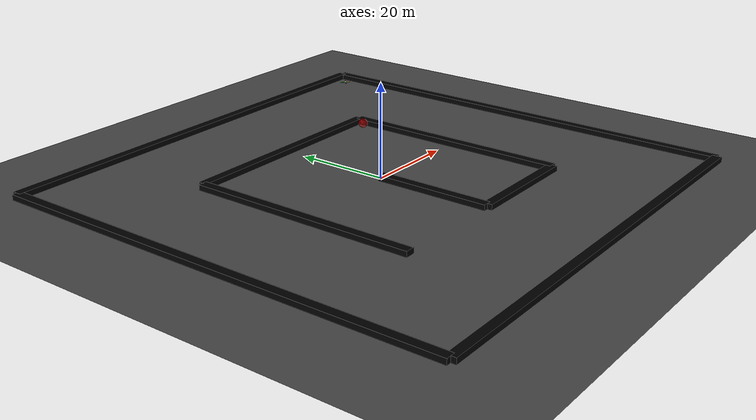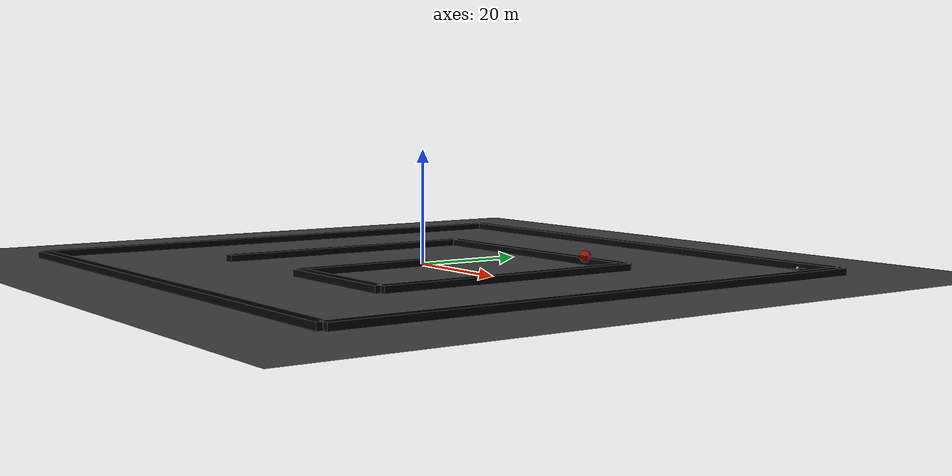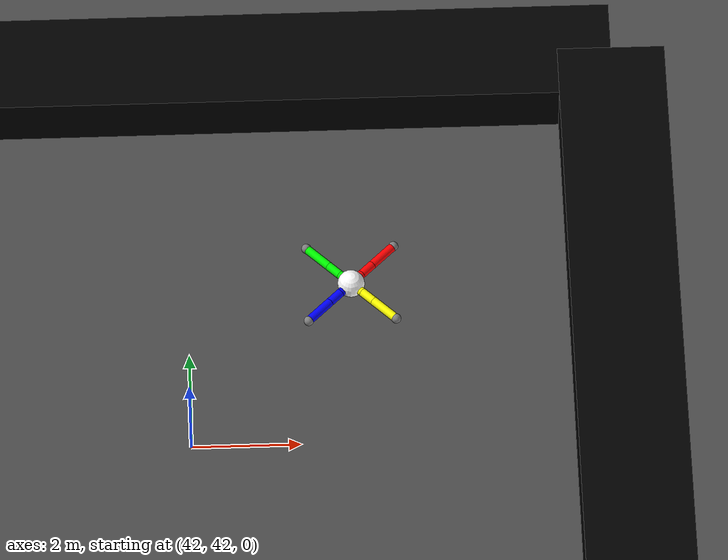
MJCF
<mujoco model="ant">
  <compiler angle="degree" coordinate="local" inertiafromgeom="true"/>
  <option integrator="RK4" timestep="0.01"/>
  <custom>
    <numeric data="0.0 0.0 0.55 1.0 0.0 0.0 0.0 0.0 1.0 0.0 -1.0 0.0 -1.0 0.0 1.0" name="init_qpos"/>
  </custom>
  <default>
    <joint armature="1" damping="1" limited="true"/>
    <geom conaffinity="0" condim="3" density="5.0" friction="1 0.5 0.5" margin="0.01" rgba="0.8 0.6 0.4 1"/>
  </default>
  <asset>
    <texture builtin="gradient" height="100" rgb1="1 1 1" rgb2="0 0 0" type="skybox" width="100"/>
    <texture builtin="flat" height="1278" mark="cross" markrgb="1 1 1" name="texgeom" random="0.01" rgb1="0.8 0.6 0.4" rgb2="0.8 0.6 0.4" type="cube" width="127"/>
    <texture builtin="checker" height="100" name="texplane" rgb1="0 0 0" rgb2="0.8 0.8 0.8" type="2d" width="100"/>
    <material name="MatPlane" reflectance="0" shininess="0" specular="0" texrepeat="60 60"/>
    <material name="geom" texture="texgeom" texuniform="true"/>
  </asset>
  <worldbody>
    <light cutoff="100" diffuse="1 1 1" dir="-0 0 -1.3" directional="true" exponent="1" pos="0 0 1.3" specular=".1 .1 .1"/>
    <geom conaffinity="3" condim="3" material="MatPlane" name="floor" pos="0 0 0" rgba="0.3 0.3 0.3 1" size="100 100 100" type="plane"/>
    <body name="wall_1" pos="-50 0 0">
      <geom pos="0 0 0" size="1 50 1" type="box" rgba="0 0 0 1" contype="1" conaffinity="1"/>
    </body>
    <body name="wall_2" pos="50 0 0">
      <geom pos="0 0 0" size="1 50 1" type="box" rgba="0 0 0 1" contype="1" conaffinity="1"/>
    </body>
    <body name="wall_3" pos="0 -50 0">
      <geom pos="0 0 0" size="50 1 1" type="box" rgba="0 0 0 1" contype="1" conaffinity="1"/>
    </body>
    <body name="wall_4" pos="0 50 0">
      <geom pos="0 0 0" size="50 1 1" type="box" rgba="0 0 0 1" contype="1" conaffinity="1"/>
    </body>
    <body name="wall_5" pos="-25 0 0">
      <geom pos="0 0 0" size="1 25 1" type="box" rgba="0 0 0 1" contype="1" conaffinity="1"/>
    </body>
    <body name="wall_6" pos="0 25 0">
      <geom pos="0 0 0" size="25 1 1" type="box" rgba="0 0 0 1" contype="1" conaffinity="1"/>
    </body>
    <body name="wall_7" pos="25 0 0">
      <geom pos="0 0 0" size="1 25 1" type="box" rgba="0 0 0 1" contype="1" conaffinity="1"/>
    </body>
    <body name="wall_8" pos="12.5 -25 0">
      <geom pos="0 0 0" size="12.5 1 1" type="box" rgba="0 0 0 1" contype="1" conaffinity="1"/>
    </body>
    <body name="wall_9" pos="0 -12.5 0">
      <geom pos="0 0 0" size="1 12.5 1" type="box" rgba="0 0 0 01" contype="1" conaffinity="1"/>
    </body>
    <body name="torso" pos="45 45 0.75">
      <camera name="track" mode="fixed" pos="0 -3 0.3" xyaxes="-1 0 1 0 0 -1"/>
      <geom name="torso_geom" pos="0 0 0" size="0.25" type="sphere" rgba="1 1 1 1"/>
      <site name="torso_site" size="0.01 0.01 0.01"/>
      <joint armature="0" damping="0" limited="false" margin="0.01" name="root" pos="0 0 0" type="free"/>
      <body name="front_left_leg" pos="0 0 0">
        <geom fromto="0.0 0.0 0.0 0.2 0.2 0.0" name="aux_1_geom" size="0.08" type="capsule" rgba="1 0 0 1"/>
        <body name="aux_1" pos="0.2 0.2 0">
          <joint axis="0 0 1" name="hip_1" pos="0.0 0.0 0.0" range="-30 30" type="hinge"/>
          <geom fromto="0.0 0.0 0.0 0.2 0.2 0.0" name="left_leg_geom" size="0.08" type="capsule" rgba="1 0 0 1"/>
          <body pos="0.2 0.2 0">
            <joint axis="-1 1 0" name="ankle_1" pos="0.0 0.0 0.0" range="30 70" type="hinge"/>
            <geom fromto="0.0 0.0 0.0 0.4 0.4 0.0" name="left_ankle_geom" size="0.08" type="capsule" rgba="1 0 0 1"/>
            <site name="foot_1" size="0.09" pos=".4 .4 0" type="sphere"/>
          </body>
        </body>
      </body>
      <body name="front_right_leg" pos="0 0 0">
        <geom fromto="0.0 0.0 0.0 -0.2 0.2 0.0" name="aux_2_geom" size="0.08" type="capsule" rgba="0 1 0 1"/>
        <body name="aux_2" pos="-0.2 0.2 0">
          <joint axis="0 0 1" name="hip_2" pos="0.0 0.0 0.0" range="-30 30" type="hinge"/>
          <geom fromto="0.0 0.0 0.0 -0.2 0.2 0.0" name="right_leg_geom" size="0.08" type="capsule" rgba="0 1 0 1"/>
          <body pos="-0.2 0.2 0">
            <joint axis="1 1 0" name="ankle_2" pos="0.0 0.0 0.0" range="-70 -30" type="hinge"/>
            <geom fromto="0.0 0.0 0.0 -0.4 0.4 0.0" name="right_ankle_geom" size="0.08" type="capsule" rgba="0 1 0 1"/>
            <site name="foot_2" size="0.09" pos="-.4 .4 0" type="sphere"/>
          </body>
        </body>
      </body>
      <body name="back_leg" pos="0 0 0">
        <geom fromto="0.0 0.0 0.0 -0.2 -0.2 0.0" name="aux_3_geom" size="0.08" type="capsule" rgba="0 0 1 1"/>
        <body name="aux_3" pos="-0.2 -0.2 0">
          <joint axis="0 0 1" name="hip_3" pos="0.0 0.0 0.0" range="-30 30" type="hinge"/>
          <geom fromto="0.0 0.0 0.0 -0.2 -0.2 0.0" name="back_leg_geom" size="0.08" type="capsule" rgba="0 0 1 1"/>
          <body pos="-0.2 -0.2 0">
            <joint axis="-1 1 0" name="ankle_3" pos="0.0 0.0 0.0" range="-70 -30" type="hinge"/>
            <geom fromto="0.0 0.0 0.0 -0.4 -0.4 0.0" name="third_ankle_geom" size="0.08" type="capsule" rgba="0 0 1 1"/>
            <site name="foot_3" size="0.09" pos="-.4 -.4 0" type="sphere"/>
          </body>
        </body>
      </body>
      <body name="right_back_leg" pos="0 0 0">
        <geom fromto="0.0 0.0 0.0 0.2 -0.2 0.0" name="aux_4_geom" size="0.08" type="capsule"  rgba="1 1 0 1"/>
        <body name="aux_4" pos="0.2 -0.2 0">
          <joint axis="0 0 1" name="hip_4" pos="0.0 0.0 0.0" range="-30 30" type="hinge"/>
          <geom fromto="0.0 0.0 0.0 0.2 -0.2 0.0" name="rightback_leg_geom" size="0.08" type="capsule" rgba="1 1 0 1"/>
          <body pos="0.2 -0.2 0">
            <joint axis="1 1 0" name="ankle_4" pos="0.0 0.0 0.0" range="30 70" type="hinge"/>
            <geom fromto="0.0 0.0 0.0 0.4 -0.4 0.0" name="fourth_ankle_geom" size="0.08" type="capsule" rgba="1 1 0 1"/>
            <site name="foot_4" size="0.09" pos=".4 -.4 0" type="sphere"/>
          </body>
        </body>
      </body>
    </body>
    <body name="waypoint" pos="20 20 2">
      <geom pos="0 0 0" size="1 1 1" type="ellipsoid" rgba="1 0 0 .5" contype="2" conaffinity="0"/>
      <joint armature="0" damping="0" limited="false" margin="0.01" name="way_root" pos="0 0 0" type="free"/>
    </body>
  </worldbody>
  <actuator>
    <motor ctrllimited="true" ctrlrange="-1.0 1.0" joint="hip_1" gear="5"/>
    <motor ctrllimited="true" ctrlrange="-1.0 1.0" joint="ankle_1" gear="5"/>
    <motor ctrllimited="true" ctrlrange="-1.0 1.0" joint="hip_2" gear="5"/>
    <motor ctrllimited="true" ctrlrange="-1.0 1.0" joint="ankle_2" gear="5"/>
    <motor ctrllimited="true" ctrlrange="-1.0 1.0" joint="hip_3" gear="5"/>
    <motor ctrllimited="true" ctrlrange="-1.0 1.0" joint="ankle_3" gear="5"/>
    <motor ctrllimited="true" ctrlrange="-1.0 1.0" joint="hip_4" gear="5"/>
    <motor ctrllimited="true" ctrlrange="-1.0 1.0" joint="ankle_4" gear="5"/>
  </actuator>
  <sensor>
    <framexaxis name="x_axis" objtype="body" objname="torso" cutoff="0" noise="0"/>
    <frameyaxis name="y_axis" objtype="body" objname="torso" cutoff="0" noise="0"/>
    <framezaxis name="z_axis" objtype="body" objname="torso" cutoff="0" noise="0"/>
    <accelerometer name="accelerometer" site="torso_site" cutoff="0" noise="0"/>
    <gyro name="gyro" site="torso_site" cutoff="0" noise="0"/>
    <velocimeter name="velocimeter" site="torso_site"/>
    <jointpos name="hip_1_pos" noise="0" cutoff="0" joint="hip_1"/>
    <jointpos name="ankle_1_pos" noise="0" cutoff="0" joint="ankle_1"/>
    <jointpos name="hip_2_pos" noise="0" cutoff="0" joint="hip_2"/>
    <jointpos name="ankle_2_pos" noise="0" cutoff="0" joint="ankle_2"/>
    <jointpos name="hip_3_pos" noise="0" cutoff="0" joint="hip_3"/>
    <jointpos name="ankle_3_pos" noise="0" cutoff="0" joint="ankle_3"/>
    <jointpos name="hip_4_pos" noise="0" cutoff="0" joint="hip_4"/>
    <jointpos name="ankle_4_pos" noise="0" cutoff="0" joint="ankle_4"/>
    <jointvel name="hip_1_vel" noise="0" cutoff="0" joint="hip_1"/>
    <jointvel name="ankle_1_vel" noise="0" cutoff="0" joint="ankle_1"/>
    <jointvel name="hip_2_vel" noise="0" cutoff="0" joint="hip_2"/>
    <jointvel name="ankle_2_vel" noise="0" cutoff="0" joint="ankle_2"/>
    <jointvel name="hip_3_vel" noise="0" cutoff="0" joint="hip_3"/>
    <jointvel name="ankle_3_vel" noise="0" cutoff="0" joint="ankle_3"/>
    <jointvel name="hip_4_vel" noise="0" cutoff="0" joint="hip_4"/>
    <jointvel name="ankle_4_vel" noise="0" cutoff="0" joint="ankle_4"/>
    <touch name="foot_1_touch" site="foot_1" noise="0" cutoff="0"/>
    <touch name="foot_2_touch" site="foot_2" noise="0" cutoff="0"/>
    <touch name="foot_3_touch" site="foot_3" noise="0" cutoff="0"/>
    <touch name="foot_4_touch" site="foot_4" noise="0" cutoff="0"/>
    <framepos name="pos" noise="0" cutoff="0" objtype="body" objname="torso"/>
  </sensor>
</mujoco>
